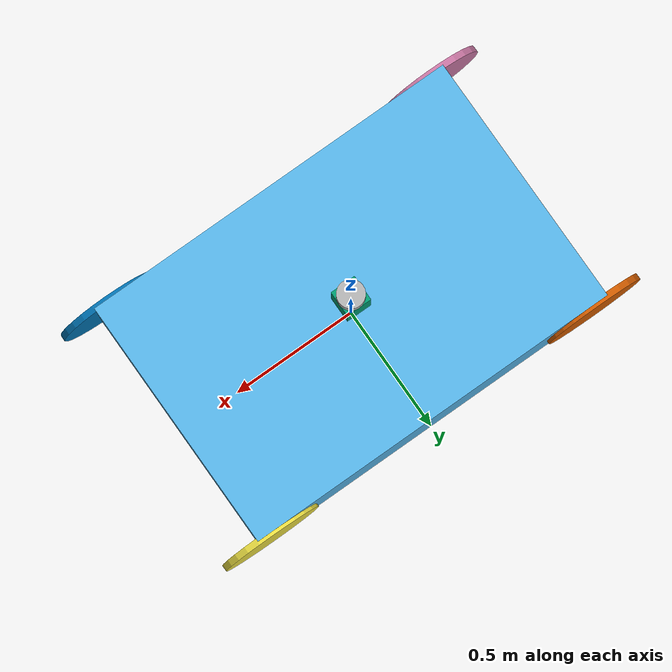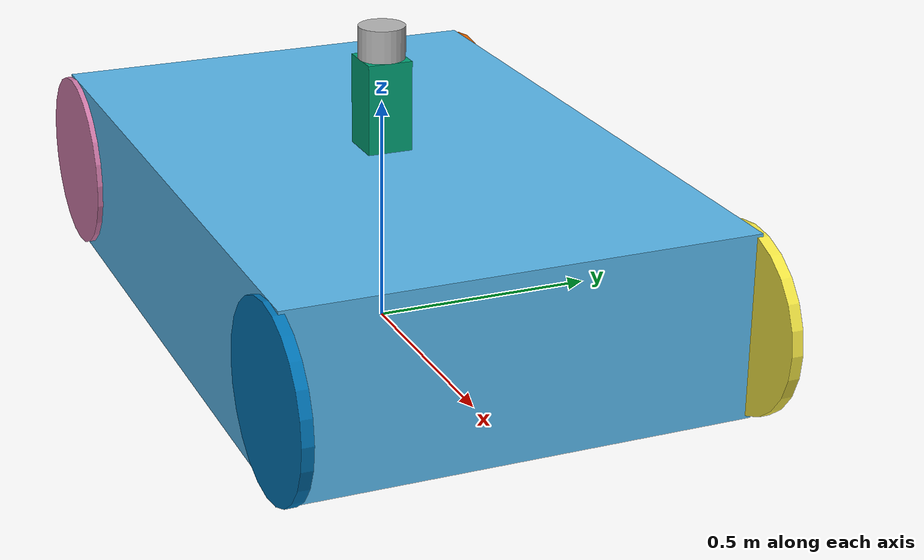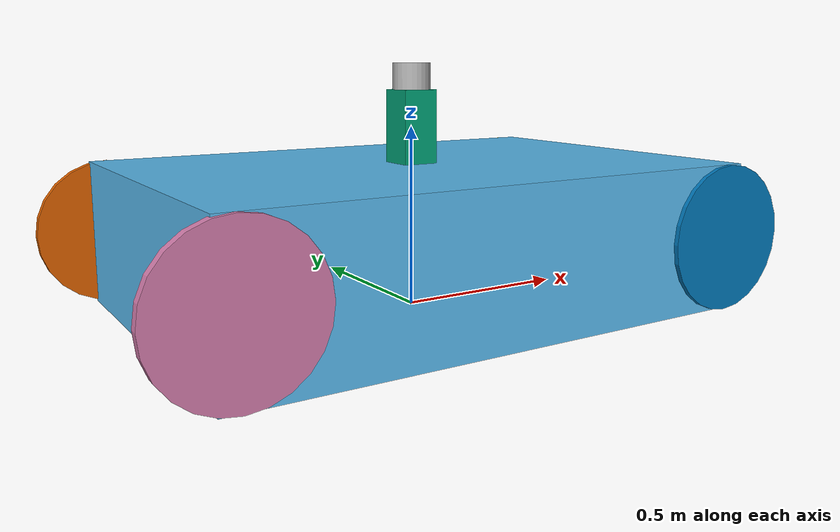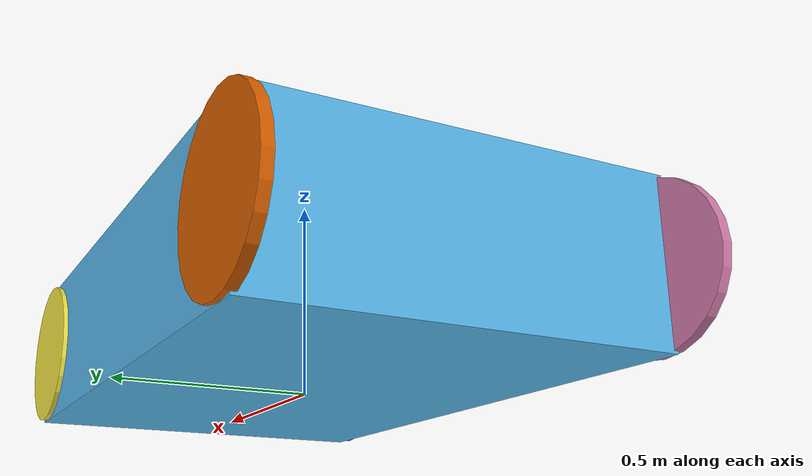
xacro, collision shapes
<?xml version="1.0"?>
<robot name="feldschwarm_robot" xmlns:xacro="http://ros.org/wiki/xacro">

    <xacro:property name="wheel_lenght" value="0.1"/>
    <xacro:property name="wheel_width" value="0.025" />
    <xacro:property name="wheel_radius" value="0.2"/>
    <xacro:property name="chasiss_height" value="0.4"/>
    <xacro:property name="chasiss_width" value="1"/>
    <xacro:property name="chasiss_length" value="1.5"/>
    <xacro:include filename="$(find test_package)/urdf/wheel.urdf.xacro" />
    <!--xacro:include filename="$(find test_package)/urdf/leg.urdf.xacro" /-->
    <!--xacro:include filename="$(find test_package)/urdf/vlp16_mount.urdf.xacro" /-->

    <xacro:property name="M_PI" value="3.14159"/>
    <xacro:property name="wheelbase" value="1.4" />
    <xacro:property name="track" value="1" />
    <xacro:property name="wheel_vertical_offset" value="0" />
    <xacro:property name="PI" value="3.1415926535897931" />

    <xacro:property name="base_vertical_offset" value="${wheel_radius-wheel_vertical_offset}" />

    <link name="base_footprint"/>

    <joint name="footprint_joint" type="fixed">
       <origin xyz="0 0 ${base_vertical_offset}" rpy="0 0 0" />
       <parent link="base_footprint" />
       <child link="robot_chasiss" />
    </joint>

    <link name="robot_chasiss">
      <visual>
        <geometry>
          <box size="${chasiss_length} ${chasiss_width} ${chasiss_height}"/>
        </geometry>
      </visual>

      <collision>
        <geometry>
          <box size="${chasiss_length} ${chasiss_width} ${chasiss_height}"/>
        </geometry>
      </collision>

      <inertial>
        <mass value="1"/>
        <inertia ixx="0.166667" ixy="0" ixz="0" iyy="0.166667" iyz="0" izz="0.166667"/>
      </inertial>

    </link>

    <link name="lidar_stand">
      <visual>
        <geometry>
          <box size="0.1 0.1 0.2" />
        </geometry>
        <!--material name="black" /-->
      </visual>
      <collision>
        <geometry>
          <box size="0.1 0.1 0.2" />
        </geometry>

      </collision>
      <inertial>
        <mass value="1" />
        <inertia ixx="0.145833" ixy="0.0" ixz="0.145833" iyy="0.0" iyz="0.0" izz="0.1250"/>
      </inertial>

    </link>

    <joint name="joint_name" type="fixed">
      <parent link="robot_chasiss"/>
      <child link="lidar_stand"/>
      <axis xyz="0.0 0.0 1.0"/>
      <origin xyz="0.0 0.0 0.3"/>
      <!--limit lower="0.0" upper="0.0" effort="0.0" velocity="0.0"/-->
    </joint>

    <xacro:feldschwarm_wheel wheel_prefix="front_left">
      <origin xyz="${wheelbase/2} ${track/2} ${wheel_vertical_offset}" rpy="0 0 0" />
    </xacro:feldschwarm_wheel>
    <xacro:feldschwarm_wheel wheel_prefix="front_right">
      <origin xyz="${wheelbase/2} ${-track/2} ${wheel_vertical_offset}" rpy="0 0 0" />
    </xacro:feldschwarm_wheel>
    <xacro:feldschwarm_wheel wheel_prefix="rear_left">
      <origin xyz="${-wheelbase/2} ${track/2} ${wheel_vertical_offset}" rpy="0 0 0" />
    </xacro:feldschwarm_wheel>
    <xacro:feldschwarm_wheel wheel_prefix="rear_right">
      <origin xyz="${-wheelbase/2} ${-track/2} ${wheel_vertical_offset}" rpy="0 0 0" />
    </xacro:feldschwarm_wheel>

    <xacro:include filename="$(find velodyne_description)/urdf/VLP-16.urdf.xacro"/>
    <VLP-16 parent="robot_chasiss" name="velodyne" topic="/velodyne_points" hz="10" samples="1024" gpu="false" lasers="16" max_range="100">
      <origin xyz="0 0 0.4" rpy="0 0 0" />
    </VLP-16>

</robot>

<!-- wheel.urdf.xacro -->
<robot  xmlns:xacro="http://ros.org/wiki/xacro" >

    <xacro:macro name="feldschwarm_wheel" params="wheel_prefix *joint_pose">
      <link name="${wheel_prefix}_wheel_link">

        <collision name="Robot_1.0__collision">
            <origin rpy="${PI/2}  0  0" xyz="0  0  0"/>
            <geometry>
             <cylinder length="${wheel_width}" radius="${wheel_radius}"/>
            </geometry>
        </collision>
        <visual name="Robot_1.0__visual">
            <origin rpy="${PI/2}  0  0" xyz="0  0  0"/>
            <geometry>
             <cylinder length="${wheel_width}" radius="${wheel_radius}"/>
            </geometry>
        </visual>
        <inertial>
          <mass value="1"/>
          <origin rpy="0  0  0" xyz="0  0  0"/>
          <inertia ixx="0.145833" ixy="0" ixz="0" iyy="0.145833" iyz="0" izz="0.125"/>
        </inertial>
      </link>

      <gazebo reference="${wheel_prefix}_wheel_link">
			  <mu1 value="1.0"/>
			  <mu2 value="1.0"/>
			  <kp value="10000000.0" />
			  <kd value="1.0" />
			  <fdir1 value="1 0 0"/>
		  </gazebo>

      <transmission name="${wheel_prefix}_wheel_trans" type="SimpleTransmission">
       <type>transmission_interface/SimpleTransmission</type>
       <actuator name="${wheel_prefix}_wheel_motor">
         <mechanicalReduction>1</mechanicalReduction>
       </actuator>
       <joint name="${wheel_prefix}_wheel">
         <hardwareInterface>VelocityJointInterface</hardwareInterface>
       </joint>
      </transmission>

      <joint name="${wheel_prefix}_wheel" type="continuous">
        <parent link="robot_chasiss"/>
        <child link="${wheel_prefix}_wheel_link"/>
        <xacro:insert_block name="joint_pose"/>
        <axis xyz="0 1 0" rpy="0 0 0" />
      </joint>

    </xacro:macro>

</robot>

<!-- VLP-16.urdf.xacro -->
<robot xmlns:xacro="http://www.ros.org/wiki/xacro" name="VLP-16">
  <xacro:property name="M_PI" value="3.1415926535897931" />
  <xacro:macro name="VLP-16" params="*origin parent:=base_link name:=velodyne topic:=/velodyne_points hz:=10 lasers:=16 samples:=1875 collision_range:=0.3 min_range:=0.9 max_range:=130.0 noise:=0.008 min_angle:=-${M_PI} max_angle:=${M_PI} gpu:=false">

    <joint name="${name}_base_mount_joint" type="fixed">
      <xacro:insert_block name="origin" />
      <parent link="${parent}"/>
      <child link="${name}_base_link"/>
    </joint>

    <link name="${name}_base_link">
      <inertial>
        <mass value="0.01"/>
        <origin xyz="0 0 0.03585"/>
        <inertia ixx="${(0.01 * (3.0*0.0516*0.0516 + 0.0717*0.0717)) / 12.0}" ixy="0" ixz="0"
          iyy="${(0.01 * (3.0*0.0516*0.0516 + 0.0717*0.0717)) / 12.0}" iyz="0"
          izz="${0.5 * 0.01 * (0.0516*0.0516)}"/>
      </inertial>
      <visual>
        <geometry>
          <mesh filename="package://velodyne_description/meshes/VLP16_base_1.dae" />
        </geometry>
      </visual>
      <visual>
        <geometry>
          <mesh filename="package://velodyne_description/meshes/VLP16_base_2.dae" />
        </geometry>
      </visual>
      <collision>
        <origin rpy="0 0 0" xyz="0 0 0.03585"/>
        <geometry>
          <cylinder radius="0.0516" length="0.0717"/>
        </geometry>
      </collision>
    </link>

    <joint name="${name}_base_scan_joint" type="fixed" >
      <origin xyz="0 0 0.0377" rpy="0 0 0" />
      <parent link="${name}_base_link" />
      <child link="${name}"/>
    </joint>

    <link name="${name}">
      <inertial>
        <mass value="0.01"/>
        <origin xyz="0 0 0"/>
        <inertia ixx="1e-7" ixy="0" ixz="0" iyy="1e-7" iyz="0" izz="1e-7"/>
      </inertial>
      <visual>
        <origin xyz="0 0 -0.0377" />
        <geometry>
          <mesh filename="package://velodyne_description/meshes/VLP16_scan.dae" />
        </geometry>
      </visual>
    </link>

    <!-- Gazebo requires the velodyne_gazebo_plugins package -->
    <gazebo reference="${name}">
      <xacro:if value="${gpu}">
        <sensor type="gpu_ray" name="${name}-VLP16">
          <pose>0 0 0 0 0 0</pose>
          <visualize>false</visualize>
          <update_rate>${hz}</update_rate>
          <ray>
            <scan>
              <horizontal>
                <samples>${samples}</samples>
                <resolution>1</resolution>
                <min_angle>${min_angle}</min_angle>
                <max_angle>${max_angle}</max_angle>
              </horizontal>
              <vertical>
                <samples>${lasers}</samples>
                <resolution>1</resolution>
                <min_angle>-${15.0*M_PI/180.0}</min_angle>
                <max_angle> ${15.0*M_PI/180.0}</max_angle>
              </vertical>
            </scan>
            <range>
              <min>${collision_range}</min>
              <max>${max_range+1}</max>
              <resolution>0.001</resolution>
            </range>
            <noise>
              <type>gaussian</type>
              <mean>0.0</mean>
              <stddev>0.0</stddev>
            </noise>
          </ray>
          <plugin name="gazebo_ros_laser_controller" filename="libgazebo_ros_velodyne_gpu_laser.so">
            <topicName>${topic}</topicName>
            <frameName>${name}</frameName>
            <min_range>${min_range}</min_range>
            <max_range>${max_range}</max_range>
            <gaussianNoise>${noise}</gaussianNoise>
          </plugin>
        </sensor>
      </xacro:if>
      <xacro:unless value="${gpu}">
        <sensor type="ray" name="${name}-VLP16">
          <pose>0 0 0 0 0 0</pose>
          <visualize>false</visualize>
          <update_rate>${hz}</update_rate>
          <ray>
            <scan>
              <horizontal>
                <samples>${samples}</samples>
                <resolution>1</resolution>
                <min_angle>${min_angle}</min_angle>
                <max_angle>${max_angle}</max_angle>
              </horizontal>
              <vertical>
                <samples>${lasers}</samples>
                <resolution>1</resolution>
                <min_angle>-${15.0*M_PI/180.0}</min_angle>
                <max_angle> ${15.0*M_PI/180.0}</max_angle>
              </vertical>
            </scan>
            <range>
              <min>${collision_range}</min>
              <max>${max_range+1}</max>
              <resolution>0.001</resolution>
            </range>
            <noise>
              <type>gaussian</type>
              <mean>0.0</mean>
              <stddev>0.0</stddev>
            </noise>
          </ray>
          <plugin name="gazebo_ros_laser_controller" filename="libgazebo_ros_velodyne_laser.so">
            <topicName>${topic}</topicName>
            <frameName>${name}</frameName>
            <min_range>${min_range}</min_range>
            <max_range>${max_range}</max_range>
            <gaussianNoise>${noise}</gaussianNoise>
          </plugin>
        </sensor>
      </xacro:unless>
    </gazebo>

  </xacro:macro>
</robot>
